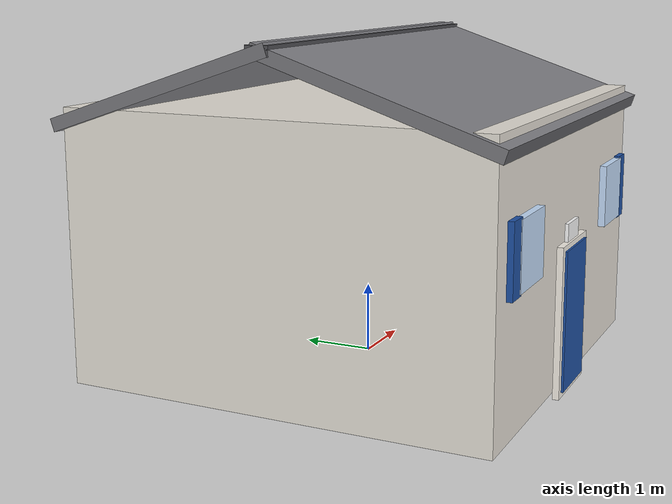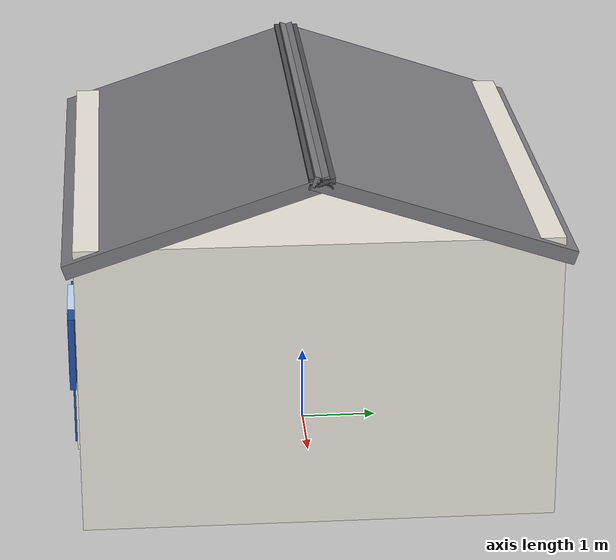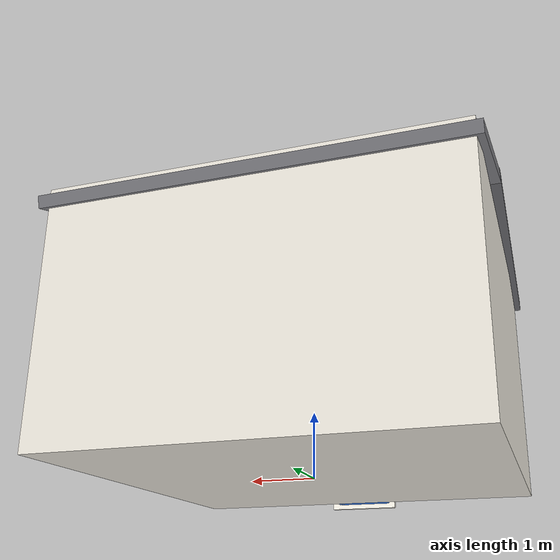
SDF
<?xml version="1.0" ?>
<!-- House Type C: 6x6m white Mediterranean, grey pitched roof, front faces -Y -->
<sdf version="1.6">
  <model name="house_type_c">
    <static>true</static>
    <link name="link">

      <collision name="col">
        <pose>0 0 2.25 0 0 0</pose>
        <geometry><box><size>6 6 4.5</size></box></geometry>
      </collision>

      <visual name="walls">
        <pose>0 0 1.9 0 0 0</pose>
        <geometry><box><size>6 6 3.8</size></box></geometry>
        <material>
          <ambient>0.92 0.90 0.86 1</ambient>
          <diffuse>0.92 0.90 0.86 1</diffuse>
          <specular>0.1 0.1 0.1 1</specular>
        </material>
      </visual>

      <visual name="roof_left">
        <pose>0 1.5 4.1 -0.322 0 0</pose>
        <geometry><box><size>6.2 3.4 0.18</size></box></geometry>
        <material><ambient>0.48 0.48 0.50 1</ambient><diffuse>0.48 0.48 0.50 1</diffuse></material>
      </visual>
      <visual name="roof_right">
        <pose>0 -1.5 4.1 0.322 0 0</pose>
        <geometry><box><size>6.2 3.4 0.18</size></box></geometry>
        <material><ambient>0.48 0.48 0.50 1</ambient><diffuse>0.48 0.48 0.50 1</diffuse></material>
      </visual>
      <visual name="ridge">
        <pose>0 0 4.62 0 0 0</pose>
        <geometry><box><size>6.2 0.32 0.14</size></box></geometry>
        <material><ambient>0.32 0.32 0.34 1</ambient><diffuse>0.32 0.32 0.34 1</diffuse></material>
      </visual>

      <!-- Blue door (Mediterranean) -->
      <visual name="door">
        <pose>0 -3.06 0.95 0 0 0</pose>
        <geometry><box><size>0.95 0.12 1.95</size></box></geometry>
        <material><ambient>0.12 0.32 0.65 1</ambient><diffuse>0.12 0.32 0.65 1</diffuse></material>
      </visual>
      <visual name="door_arch">
        <pose>0 -3.045 0.95 0 0 0</pose>
        <geometry><box><size>1.15 0.09 2.1</size></box></geometry>
        <material><ambient>0.98 0.96 0.92 1</ambient><diffuse>0.98 0.96 0.92 1</diffuse></material>
      </visual>

      <visual name="win_front_left">
        <pose>-2.0 -3.06 2.3 0 0 0</pose>
        <geometry><box><size>0.9 0.1 0.9</size></box></geometry>
        <material>
          <ambient>0.78 0.88 1.0 1</ambient><diffuse>0.78 0.88 1.0 1</diffuse>
          <specular>0.5 0.5 0.5 1</specular>
        </material>
      </visual>
      <!-- Blue shutters -->
      <visual name="shutter_fl">
        <pose>-2.55 -3.06 2.3 0 0 0</pose>
        <geometry><box><size>0.32 0.08 0.95</size></box></geometry>
        <material><ambient>0.12 0.32 0.65 1</ambient><diffuse>0.12 0.32 0.65 1</diffuse></material>
      </visual>
      <visual name="win_front_right">
        <pose>2.0 -3.06 2.3 0 0 0</pose>
        <geometry><box><size>0.9 0.1 0.9</size></box></geometry>
        <material>
          <ambient>0.78 0.88 1.0 1</ambient><diffuse>0.78 0.88 1.0 1</diffuse>
          <specular>0.5 0.5 0.5 1</specular>
        </material>
      </visual>
      <visual name="shutter_fr">
        <pose>2.55 -3.06 2.3 0 0 0</pose>
        <geometry><box><size>0.32 0.08 0.95</size></box></geometry>
        <material><ambient>0.12 0.32 0.65 1</ambient><diffuse>0.12 0.32 0.65 1</diffuse></material>
      </visual>

      <visual name="qr_code">
        <pose>0 -3.035 2.0 0 0 0</pose>
        <geometry><box><size>0.5 0.05 0.5</size></box></geometry>
        <material><ambient>1 1 1 1</ambient><diffuse>1 1 1 1</diffuse></material>
      </visual>

    </link>
  </model>
</sdf>
